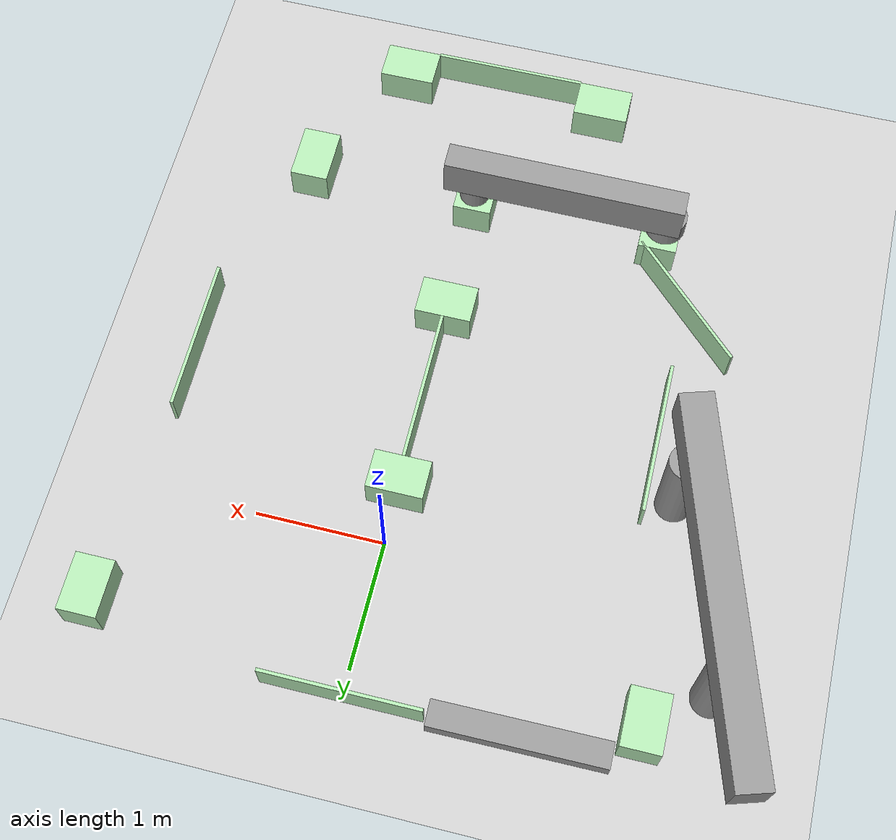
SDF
<sdf version="1.6">
 <world name="default">
  <scene><ambient>0.5 0.5 0.5 1</ambient><background>0.5 0.5 0.5 1</background><shadows>0</shadows></scene>
  <physics name="default_physics" default="0" type="ode">
   <ode>
    <solver>
     <type>quick</type>
     <iters>10</iters>
     <sor>1.3</sor>
     <use_dynamic_moi_rescaling>0</use_dynamic_moi_rescaling>
    </solver>
    <constraints>
     <cfm>0</cfm>
     <erp>0.2</erp>
     <contact_max_correcting_vel>100</contact_max_correcting_vel>
     <contact_surface_layer>0.001</contact_surface_layer>
    </constraints>
   </ode>
   <real_time_update_rate>1000</real_time_update_rate>
   <max_step_size>0.001</max_step_size>
   <real_time_factor>1</real_time_factor>
  </physics>
  <light name="directional_light_1" type="directional">
   <cast_shadows>0</cast_shadows>
   <pose>0 0 30 0.1 0.1 0</pose>
   <diffuse>1 1 1 1</diffuse>
   <specular>0.1 0.1 0.1 1</specular>
   <attenuation><range>300</range></attenuation>
   <direction>0.1 0.1 -1</direction>
  </light>
  <model name="ground_plane">
   <static>1</static>
   <link name="link">
    <collision name="collision">
     <geometry><plane><normal>0 0 1</normal><size>100 100</size></plane></geometry>
     <surface><friction><ode><mu>100</mu><mu2>50</mu2></ode></friction></surface>
    </collision>
    <visual name="visual">
     <cast_shadows>0</cast_shadows>
     <geometry><plane><normal>0 0 1</normal><size>100 100</size></plane></geometry>
     <material>
      <script><uri>file://media/materials/scripts/gazebo.material</uri><name>Gazebo/Grey</name></script>
     </material>
    </visual>
   </link>
  </model>
  <model name="wall_1">
   <static>1</static>
   <link name="wall_1_link">
    <pose>0 -4.2672 0.15 0 -0 1.5708</pose>
    <collision name="wall_1_collision"><geometry><box><size>0.0254 1.2192 0.3</size></box></geometry></collision>
    <visual name="wall_1_visual">
     <geometry><box><size>0.0254 1.2192 0.3</size></box></geometry>
     <material>
      <ambient>0.7 0.9 0.7 1</ambient>
      <diffuse>0.7 0.9 0.7 1</diffuse>
      <specular>0.1 0.1 0.1 1</specular>
      <emissive>0 0 0 0</emissive>
     </material>
    </visual>
   </link>
  </model>
  <model name="wall_2">
   <static>1</static>
   <link name="wall_2_link">
    <pose>0 -1.2192 0.15 0 -0 0</pose>
    <collision name="wall_2_collision"><geometry><box><size>0.0254 1.2192 0.3</size></box></geometry></collision>
    <visual name="wall_2_visual">
     <geometry><box><size>0.0254 1.2192 0.3</size></box></geometry>
     <material>
      <ambient>0.7 0.9 0.7 1</ambient>
      <diffuse>0.7 0.9 0.7 1</diffuse>
      <specular>0.1 0.1 0.1 1</specular>
      <emissive>0 0 0 0</emissive>
     </material>
    </visual>
   </link>
  </model>
  <model name="wall_3">
   <static>1</static>
   <link name="wall_3_link">
    <pose>0 1.2192 0.15 0 -0 1.5708</pose>
    <collision name="wall_3_collision"><geometry><box><size>0.0254 1.2192 0.3</size></box></geometry></collision>
    <visual name="wall_3_visual">
     <geometry><box><size>0.0254 1.2192 0.3</size></box></geometry>
     <material>
      <ambient>0.7 0.9 0.7 1</ambient>
      <diffuse>0.7 0.9 0.7 1</diffuse>
      <specular>0.1 0.1 0.1 1</specular>
      <emissive>0 0 0 0</emissive>
     </material>
    </visual>
   </link>
  </model>
  <model name="wall_4">
   <static>1</static>
   <link name="wall_4_link">
    <pose>1.8288 -1.2192 0.15 0 -0 0</pose>
    <collision name="wall_4_collision"><geometry><box><size>0.0254 1.2192 0.3</size></box></geometry></collision>
    <visual name="wall_4_visual">
     <geometry><box><size>0.0254 1.2192 0.3</size></box></geometry>
     <material>
      <ambient>0.7 0.9 0.7 1</ambient>
      <diffuse>0.7 0.9 0.7 1</diffuse>
      <specular>0.1 0.1 0.1 1</specular>
      <emissive>0 0 0 0</emissive>
     </material>
    </visual>
   </link>
  </model>
  <model name="wall_5">
   <static>1</static>
   <link name="wall_5_link">
    <pose>-1.8288 -1.2192 0.15 0 -0 0</pose>
    <collision name="wall_5_collision"><geometry><box><size>0.0254 1.2192 0.3</size></box></geometry></collision>
    <visual name="wall_5_visual">
     <geometry><box><size>0.0254 1.2192 0.3</size></box></geometry>
     <material>
      <ambient>0.7 0.9 0.7 1</ambient>
      <diffuse>0.7 0.9 0.7 1</diffuse>
      <specular>0.1 0.1 0.1 1</specular>
      <emissive>0 0 0 0</emissive>
     </material>
    </visual>
   </link>
  </model>
  <model name="wall_6">
   <static>1</static>
   <link name="wall_6_link">
    <pose>-1.8288 -2.4384 0.15 0 -0 0.785398</pose>
    <collision name="wall_6_collision"><geometry><box><size>0.0254 1.2192 0.3</size></box></geometry></collision>
    <visual name="wall_6_visual">
     <geometry><box><size>0.0254 1.2192 0.3</size></box></geometry>
     <material>
      <ambient>0.7 0.9 0.7 1</ambient>
      <diffuse>0.7 0.9 0.7 1</diffuse>
      <specular>0.1 0.1 0.1 1</specular>
      <emissive>0 0 0 0</emissive>
     </material>
    </visual>
   </link>
  </model>
  <model name="box_7">
   <static>1</static>
   <link name="box_7_link">
    <pose>0 -0.4572 0.15 0 -0 1.5708</pose>
    <collision name="box_7_collision"><geometry><box><size>0.3048 0.4445 0.3</size></box></geometry></collision>
    <visual name="box_7_visual">
     <geometry><box><size>0.3048 0.4445 0.3</size></box></geometry>
     <material>
      <ambient>0.7 0.9 0.7 1</ambient>
      <diffuse>0.7 0.9 0.7 1</diffuse>
      <specular>0.1 0.1 0.1 1</specular>
      <emissive>0 0 0 0</emissive>
     </material>
    </visual>
   </link>
  </model>
  <model name="box_8">
   <static>1</static>
   <link name="box_8_link">
    <pose>0 -1.9812 0.15 0 -0 1.5708</pose>
    <collision name="box_8_collision"><geometry><box><size>0.3048 0.4445 0.3</size></box></geometry></collision>
    <visual name="box_8_visual">
     <geometry><box><size>0.3048 0.4445 0.3</size></box></geometry>
     <material>
      <ambient>0.7 0.9 0.7 1</ambient>
      <diffuse>0.7 0.9 0.7 1</diffuse>
      <specular>0.1 0.1 0.1 1</specular>
      <emissive>0 0 0 0</emissive>
     </material>
    </visual>
   </link>
  </model>
  <model name="box_9">
   <static>1</static>
   <link name="box_9_link">
    <pose>0.83185 -4.1148 0.15 0 -0 1.5708</pose>
    <collision name="box_9_collision"><geometry><box><size>0.3048 0.4445 0.3</size></box></geometry></collision>
    <visual name="box_9_visual">
     <geometry><box><size>0.3048 0.4445 0.3</size></box></geometry>
     <material>
      <ambient>0.7 0.9 0.7 1</ambient>
      <diffuse>0.7 0.9 0.7 1</diffuse>
      <specular>0.1 0.1 0.1 1</specular>
      <emissive>0 0 0 0</emissive>
     </material>
    </visual>
   </link>
  </model>
  <model name="box_10">
   <static>1</static>
   <link name="box_10_link">
    <pose>-0.83185 -4.1148 0.15 0 -0 1.5708</pose>
    <collision name="box_10_collision"><geometry><box><size>0.3048 0.4445 0.3</size></box></geometry></collision>
    <visual name="box_10_visual">
     <geometry><box><size>0.3048 0.4445 0.3</size></box></geometry>
     <material>
      <ambient>0.7 0.9 0.7 1</ambient>
      <diffuse>0.7 0.9 0.7 1</diffuse>
      <specular>0.1 0.1 0.1 1</specular>
      <emissive>0 0 0 0</emissive>
     </material>
    </visual>
   </link>
  </model>
  <model name="box_11">
   <static>1</static>
   <link name="box_11_link">
    <pose>0 -3.048 0.15 0 -0 0</pose>
    <collision name="box_11_collision"><geometry><box><size>0.3048 0.4445 0.3</size></box></geometry></collision>
    <visual name="box_11_visual">
     <geometry><box><size>0.3048 0.4445 0.3</size></box></geometry>
     <material>
      <ambient>0.7 0.9 0.7 1</ambient>
      <diffuse>0.7 0.9 0.7 1</diffuse>
      <specular>0.1 0.1 0.1 1</specular>
      <emissive>0 0 0 0</emissive>
     </material>
    </visual>
   </link>
  </model>
  <model name="box_12">
   <static>1</static>
   <link name="box_12_link">
    <pose>1.3716 -3.048 0.15 0 -0 0</pose>
    <collision name="box_12_collision"><geometry><box><size>0.3048 0.4445 0.3</size></box></geometry></collision>
    <visual name="box_12_visual">
     <geometry><box><size>0.3048 0.4445 0.3</size></box></geometry>
     <material>
      <ambient>0.7 0.9 0.7 1</ambient>
      <diffuse>0.7 0.9 0.7 1</diffuse>
      <specular>0.1 0.1 0.1 1</specular>
      <emissive>0 0 0 0</emissive>
     </material>
    </visual>
   </link>
  </model>
  <model name="box_13">
   <static>1</static>
   <link name="box_13_link">
    <pose>-1.524 -3.048 0.15 0 -0 0</pose>
    <collision name="box_13_collision"><geometry><box><size>0.3048 0.4445 0.3</size></box></geometry></collision>
    <visual name="box_13_visual">
     <geometry><box><size>0.3048 0.4445 0.3</size></box></geometry>
     <material>
      <ambient>0.7 0.9 0.7 1</ambient>
      <diffuse>0.7 0.9 0.7 1</diffuse>
      <specular>0.1 0.1 0.1 1</specular>
      <emissive>0 0 0 0</emissive>
     </material>
    </visual>
   </link>
  </model>
  <model name="box_14">
   <static>1</static>
   <link name="box_14_link">
    <pose>1.9812 0.9144 0.15 0 -0 0</pose>
    <collision name="box_14_collision"><geometry><box><size>0.3048 0.4445 0.3</size></box></geometry></collision>
    <visual name="box_14_visual">
     <geometry><box><size>0.3048 0.4445 0.3</size></box></geometry>
     <material>
      <ambient>0.7 0.9 0.7 1</ambient>
      <diffuse>0.7 0.9 0.7 1</diffuse>
      <specular>0.1 0.1 0.1 1</specular>
      <emissive>0 0 0 0</emissive>
     </material>
    </visual>
   </link>
  </model>
  <model name="box_15">
   <static>1</static>
   <link name="box_15_link">
    <pose>-2.1336 0.9144 0.15 0 -0 0</pose>
    <collision name="box_15_collision"><geometry><box><size>0.3048 0.4445 0.3</size></box></geometry></collision>
    <visual name="box_15_visual">
     <geometry><box><size>0.3048 0.4445 0.3</size></box></geometry>
     <material>
      <ambient>0.7 0.9 0.7 1</ambient>
      <diffuse>0.7 0.9 0.7 1</diffuse>
      <specular>0.1 0.1 0.1 1</specular>
      <emissive>0 0 0 0</emissive>
     </material>
    </visual>
   </link>
  </model>
  <gravity>0 0 -9.81</gravity>
  <magnetic_field>6e-06 2.3e-05 -4.2e-05</magnetic_field>
  <atmosphere type="adiabatic"/>
  <audio><device>default</device></audio>
  <spherical_coordinates>
   <surface_model>EARTH_WGS84</surface_model>
   <latitude_deg>0</latitude_deg>
   <longitude_deg>0</longitude_deg>
   <elevation>0</elevation>
   <heading_deg>0</heading_deg>
  </spherical_coordinates>
  <model name="unit_box">
   <static>1</static>
   <pose>-1.29501 1.18366 0.072921 1e-06 1.4e-05 0.008937</pose>
   <link name="link">
    <inertial>
     <mass>1</mass>
     <inertia>
      <ixx>0.166667</ixx>
      <ixy>0</ixy>
      <ixz>0</ixz>
      <iyy>0.166667</iyy>
      <iyz>0</iyz>
      <izz>0.166667</izz>
     </inertia>
    </inertial>
    <collision name="collision"><geometry><box><size>1.33318 0.201485 0.145861</size></box></geometry></collision>
    <visual name="visual">
     <geometry><box><size>1.33318 0.201485 0.145861</size></box></geometry>
     <material>
      <script><name>Gazebo/Grey</name><uri>file://media/materials/scripts/gazebo.material</uri></script>
     </material>
    </visual>
   </link>
  </model>
  <model name="unit_cylinder">
   <pose>-2.04949 -0.826215 0.420406 -6.1e-05 -0.000242 -0.081169</pose>
   <link name="link">
    <inertial>
     <mass>1</mass>
     <inertia><ixx>0.145833</ixx><ixy>0</ixy><ixz>0</ixz><iyy>0.145833</iyy><iyz>0</iyz><izz>0.125</izz></inertia>
    </inertial>
    <collision name="collision">
     <geometry><cylinder><radius>0.142255</radius><length>0.843539</length></cylinder></geometry>
    </collision>
    <visual name="visual">
     <geometry><cylinder><radius>0.142255</radius><length>0.843539</length></cylinder></geometry>
     <material>
      <script><name>Gazebo/Grey</name><uri>file://media/materials/scripts/gazebo.material</uri></script>
     </material>
    </visual>
   </link>
  </model>
  <model name="unit_cylinder_0">
   <pose>-2.564 0.580219 0.40704 -0.006212 -0.002052 0.032106</pose>
   <link name="link">
    <inertial>
     <mass>1</mass>
     <inertia><ixx>0.145833</ixx><ixy>0</ixy><ixz>0</ixz><iyy>0.145833</iyy><iyz>0</iyz><izz>0.125</izz></inertia>
    </inertial>
    <collision name="collision">
     <geometry><cylinder><radius>0.144339</radius><length>0.817384</length></cylinder></geometry>
    </collision>
    <visual name="visual">
     <geometry><cylinder><radius>0.144339</radius><length>0.817384</length></cylinder></geometry>
     <material>
      <script><name>Gazebo/Grey</name><uri>file://media/materials/scripts/gazebo.material</uri></script>
     </material>
    </visual>
   </link>
  </model>
  <model name="unit_box_0">
   <pose>-2.40033 0.10827 0.999375 -1.49516 1.55262 -1.18971</pose>
   <link name="link">
    <inertial>
     <mass>1</mass>
     <inertia>
      <ixx>0.166667</ixx>
      <ixy>0</ixy>
      <ixz>0</ixz>
      <iyy>0.166667</iyy>
      <iyz>0</iyz>
      <izz>0.166667</izz>
     </inertia>
    </inertial>
    <collision name="collision"><geometry><box><size>0.345638 2.76378 0.255742</size></box></geometry></collision>
    <visual name="visual">
     <geometry><box><size>0.345638 2.76378 0.255742</size></box></geometry>
     <material>
      <script><name>Gazebo/Grey</name><uri>file://media/materials/scripts/gazebo.material</uri></script>
     </material>
    </visual>
   </link>
  </model>
  <model name="unit_cylinder_1">
   <pose>0.007464 -2.9812 0.392917 3.9e-05 -0.000185 -0.00284</pose>
   <link name="link">
    <inertial>
     <mass>1</mass>
     <inertia><ixx>0.145833</ixx><ixy>0</ixy><ixz>0</ixz><iyy>0.145833</iyy><iyz>0</iyz><izz>0.125</izz></inertia>
    </inertial>
    <collision name="collision">
     <geometry><cylinder><radius>0.121093</radius><length>0.185893</length></cylinder></geometry>
    </collision>
    <visual name="visual">
     <geometry><cylinder><radius>0.121093</radius><length>0.185893</length></cylinder></geometry>
     <material>
      <script><name>Gazebo/Grey</name><uri>file://media/materials/scripts/gazebo.material</uri></script>
     </material>
    </visual>
   </link>
  </model>
  <model name="unit_cylinder_2">
   <pose>-1.55018 -3.03678 0.389503 -6.9e-05 -0.000199 0.001954</pose>
   <link name="link">
    <inertial>
     <mass>1</mass>
     <inertia><ixx>0.145833</ixx><ixy>0</ixy><ixz>0</ixz><iyy>0.145833</iyy><iyz>0</iyz><izz>0.125</izz></inertia>
    </inertial>
    <collision name="collision">
     <geometry><cylinder><radius>0.15878</radius><length>0.179176</length></cylinder></geometry>
    </collision>
    <visual name="visual">
     <geometry><cylinder><radius>0.15878</radius><length>0.179176</length></cylinder></geometry>
     <material>
      <script><name>Gazebo/Grey</name><uri>file://media/materials/scripts/gazebo.material</uri></script>
     </material>
    </visual>
   </link>
  </model>
  <model name="unit_box_1">
   <pose>-0.717023 -2.95107 0.656889 -0.000519 -0.00436 0.000245</pose>
   <link name="link">
    <inertial>
     <mass>1</mass>
     <inertia>
      <ixx>0.166667</ixx>
      <ixy>0</ixy>
      <ixz>0</ixz>
      <iyy>0.166667</iyy>
      <iyz>0</iyz>
      <izz>0.166667</izz>
     </inertia>
    </inertial>
    <collision name="collision"><geometry><box><size>1.909 0.206284 0.347374</size></box></geometry></collision>
    <visual name="visual">
     <geometry><box><size>1.909 0.206284 0.347374</size></box></geometry>
     <material>
      <script><name>Gazebo/Grey</name><uri>file://media/materials/scripts/gazebo.material</uri></script>
     </material>
    </visual>
   </link>
  </model>
 </world>
</sdf>
